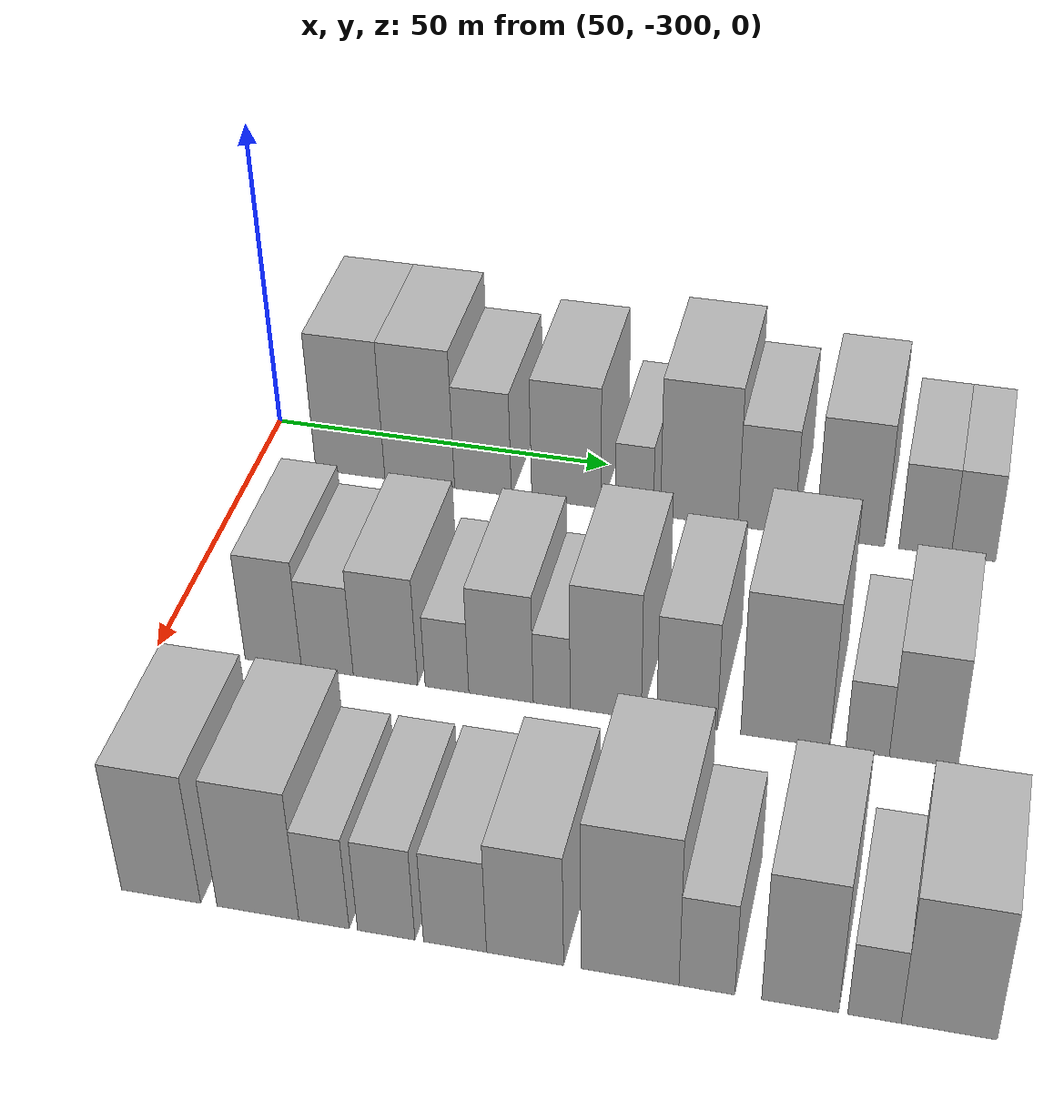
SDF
<sdf version="1.6">
 <world name="default">
  <model name="building_10">
   <static>1</static>
   <pose>50.0000 -286.0187 0 0.000000 0.000000 0.000000</pose>
   <link name="link">
    <pose>0 0 12.00 0 0 0</pose>
    <collision name="collision"><geometry><box><size>20.0000 10.4171 24.0000</size></box></geometry></collision>
    <visual name="visual">
     <cast_shadows>0</cast_shadows>
     <geometry><box><size>20.0000 10.4171 24.0000</size></box></geometry>
     <material>
      <script>
       <uri>model://HANNAS_wall/materials/scripts</uri>
       <uri>model://HANNAS_wall/materials/textures</uri>
       <name>vrc/HANNAS_wall</name>
      </script>
     </material>
    </visual>
   </link>
  </model>
  <model name="building_11">
   <static>1</static>
   <pose>50.0000 -275.6110 0 0.000000 0.000000 0.000000</pose>
   <link name="link">
    <pose>0 0 12.00 0 0 0</pose>
    <collision name="collision"><geometry><box><size>20.0000 10.3982 24.0000</size></box></geometry></collision>
    <visual name="visual">
     <cast_shadows>0</cast_shadows>
     <geometry><box><size>20.0000 10.3982 24.0000</size></box></geometry>
     <material>
      <script>
       <uri>model://HANNAS_wall/materials/scripts</uri>
       <uri>model://HANNAS_wall/materials/textures</uri>
       <name>vrc/HANNAS_wall</name>
      </script>
     </material>
    </visual>
   </link>
  </model>
  <model name="building_12">
   <static>1</static>
   <pose>50.0000 -266.2202 0 0.000000 0.000000 0.000000</pose>
   <link name="link">
    <pose>0 0 9.00 0 0 0</pose>
    <collision name="collision"><geometry><box><size>20.0000 8.3834 18.0000</size></box></geometry></collision>
    <visual name="visual">
     <cast_shadows>0</cast_shadows>
     <geometry><box><size>20.0000 8.3834 18.0000</size></box></geometry>
     <material>
      <script>
       <uri>model://HANNAS_wall/materials/scripts</uri>
       <uri>model://HANNAS_wall/materials/textures</uri>
       <name>vrc/HANNAS_wall</name>
      </script>
     </material>
    </visual>
   </link>
  </model>
  <model name="building_13">
   <static>1</static>
   <pose>50.0000 -253.9671 0 0.000000 0.000000 0.000000</pose>
   <link name="link">
    <pose>0 0 10.50 0 0 0</pose>
    <collision name="collision"><geometry><box><size>20.0000 10.1227 21.0000</size></box></geometry></collision>
    <visual name="visual">
     <cast_shadows>0</cast_shadows>
     <geometry><box><size>20.0000 10.1227 21.0000</size></box></geometry>
     <material>
      <script>
       <uri>model://HANNAS_wall/materials/scripts</uri>
       <uri>model://HANNAS_wall/materials/textures</uri>
       <name>vrc/HANNAS_wall</name>
      </script>
     </material>
    </visual>
   </link>
  </model>
  <model name="building_14">
   <static>1</static>
   <pose>50.0000 -244.1444 0 0.000000 0.000000 0.000000</pose>
   <link name="link">
    <pose>0 0 6.00 0 0 0</pose>
    <collision name="collision"><geometry><box><size>20.0000 5.5228 12.0000</size></box></geometry></collision>
    <visual name="visual">
     <cast_shadows>0</cast_shadows>
     <geometry><box><size>20.0000 5.5228 12.0000</size></box></geometry>
     <material>
      <script>
       <uri>model://HANNAS_wall/materials/scripts</uri>
       <uri>model://HANNAS_wall/materials/textures</uri>
       <name>vrc/HANNAS_wall</name>
      </script>
     </material>
    </visual>
   </link>
  </model>
  <model name="building_15">
   <static>1</static>
   <pose>50.0000 -234.8598 0 0.000000 0.000000 0.000000</pose>
   <link name="link">
    <pose>0 0 12.00 0 0 0</pose>
    <collision name="collision"><geometry><box><size>20.0000 11.0464 24.0000</size></box></geometry></collision>
    <visual name="visual">
     <cast_shadows>0</cast_shadows>
     <geometry><box><size>20.0000 11.0464 24.0000</size></box></geometry>
     <material>
      <script>
       <uri>model://HANNAS_wall/materials/scripts</uri>
       <uri>model://HANNAS_wall/materials/textures</uri>
       <name>vrc/HANNAS_wall</name>
      </script>
     </material>
    </visual>
   </link>
  </model>
  <model name="building_16">
   <static>1</static>
   <pose>50.0000 -225.3460 0 0.000000 0.000000 0.000000</pose>
   <link name="link">
    <pose>0 0 9.00 0 0 0</pose>
    <collision name="collision"><geometry><box><size>20.0000 7.9812 18.0000</size></box></geometry></collision>
    <visual name="visual">
     <cast_shadows>0</cast_shadows>
     <geometry><box><size>20.0000 7.9812 18.0000</size></box></geometry>
     <material>
      <script>
       <uri>model://HANNAS_wall/materials/scripts</uri>
       <uri>model://HANNAS_wall/materials/textures</uri>
       <name>vrc/HANNAS_wall</name>
      </script>
     </material>
    </visual>
   </link>
  </model>
  <model name="building_17">
   <static>1</static>
   <pose>50.0000 -213.5502 0 0.000000 0.000000 0.000000</pose>
   <link name="link">
    <pose>0 0 10.50 0 0 0</pose>
    <collision name="collision"><geometry><box><size>20.0000 9.6105 21.0000</size></box></geometry></collision>
    <visual name="visual">
     <cast_shadows>0</cast_shadows>
     <geometry><box><size>20.0000 9.6105 21.0000</size></box></geometry>
     <material>
      <script>
       <uri>model://HANNAS_wall/materials/scripts</uri>
       <uri>model://HANNAS_wall/materials/textures</uri>
       <name>vrc/HANNAS_wall</name>
      </script>
     </material>
    </visual>
   </link>
  </model>
  <model name="building_18">
   <static>1</static>
   <pose>50.0000 -203.1293 0 0.000000 0.000000 0.000000</pose>
   <link name="link">
    <pose>0 0 7.50 0 0 0</pose>
    <collision name="collision"><geometry><box><size>20.0000 7.2313 15.0000</size></box></geometry></collision>
    <visual name="visual">
     <cast_shadows>0</cast_shadows>
     <geometry><box><size>20.0000 7.2313 15.0000</size></box></geometry>
     <material>
      <script>
       <uri>model://HANNAS_wall/materials/scripts</uri>
       <uri>model://HANNAS_wall/materials/textures</uri>
       <name>vrc/HANNAS_wall</name>
      </script>
     </material>
    </visual>
   </link>
  </model>
  <model name="building_19">
   <static>1</static>
   <pose>50.0000 -196.4776 0 0.000000 0.000000 0.000000</pose>
   <link name="link">
    <pose>0 0 7.50 0 0 0</pose>
    <collision name="collision"><geometry><box><size>20.0000 6.0720 15.0000</size></box></geometry></collision>
    <visual name="visual">
     <cast_shadows>0</cast_shadows>
     <geometry><box><size>20.0000 6.0720 15.0000</size></box></geometry>
     <material>
      <script>
       <uri>model://HANNAS_wall/materials/scripts</uri>
       <uri>model://HANNAS_wall/materials/textures</uri>
       <name>vrc/HANNAS_wall</name>
      </script>
     </material>
    </visual>
   </link>
  </model>
  <model name="building_96">
   <static>1</static>
   <pose>90.0000 -284.1683 0 0.000000 0.000000 0.000000</pose>
   <link name="link">
    <pose>0 0 9.00 0 0 0</pose>
    <collision name="collision"><geometry><box><size>20.0000 7.7015 18.0000</size></box></geometry></collision>
    <visual name="visual">
     <cast_shadows>0</cast_shadows>
     <geometry><box><size>20.0000 7.7015 18.0000</size></box></geometry>
     <material>
      <script>
       <uri>model://HANNAS_wall/materials/scripts</uri>
       <uri>model://HANNAS_wall/materials/textures</uri>
       <name>vrc/HANNAS_wall</name>
      </script>
     </material>
    </visual>
   </link>
  </model>
  <model name="building_97">
   <static>1</static>
   <pose>90.0000 -276.8139 0 0.000000 0.000000 0.000000</pose>
   <link name="link">
    <pose>0 0 7.50 0 0 0</pose>
    <collision name="collision"><geometry><box><size>20.0000 7.0073 15.0000</size></box></geometry></collision>
    <visual name="visual">
     <cast_shadows>0</cast_shadows>
     <geometry><box><size>20.0000 7.0073 15.0000</size></box></geometry>
     <material>
      <script>
       <uri>model://HANNAS_wall/materials/scripts</uri>
       <uri>model://HANNAS_wall/materials/textures</uri>
       <name>vrc/HANNAS_wall</name>
      </script>
     </material>
    </visual>
   </link>
  </model>
  <model name="building_98">
   <static>1</static>
   <pose>90.0000 -268.9836 0 0.000000 0.000000 0.000000</pose>
   <link name="link">
    <pose>0 0 9.00 0 0 0</pose>
    <collision name="collision"><geometry><box><size>20.0000 8.6532 18.0000</size></box></geometry></collision>
    <visual name="visual">
     <cast_shadows>0</cast_shadows>
     <geometry><box><size>20.0000 8.6532 18.0000</size></box></geometry>
     <material>
      <script>
       <uri>model://HANNAS_wall/materials/scripts</uri>
       <uri>model://HANNAS_wall/materials/textures</uri>
       <name>vrc/HANNAS_wall</name>
      </script>
     </material>
    </visual>
   </link>
  </model>
  <model name="building_99">
   <static>1</static>
   <pose>90.0000 -260.7581 0 0.000000 0.000000 0.000000</pose>
   <link name="link">
    <pose>0 0 6.00 0 0 0</pose>
    <collision name="collision"><geometry><box><size>20.0000 5.7977 12.0000</size></box></geometry></collision>
    <visual name="visual">
     <cast_shadows>0</cast_shadows>
     <geometry><box><size>20.0000 5.7977 12.0000</size></box></geometry>
     <material>
      <script>
       <uri>model://HANNAS_wall/materials/scripts</uri>
       <uri>model://HANNAS_wall/materials/textures</uri>
       <name>vrc/HANNAS_wall</name>
      </script>
     </material>
    </visual>
   </link>
  </model>
  <model name="building_100">
   <static>1</static>
   <pose>90.0000 -253.6061 0 0.000000 0.000000 0.000000</pose>
   <link name="link">
    <pose>0 0 9.00 0 0 0</pose>
    <collision name="collision"><geometry><box><size>20.0000 8.5063 18.0000</size></box></geometry></collision>
    <visual name="visual">
     <cast_shadows>0</cast_shadows>
     <geometry><box><size>20.0000 8.5063 18.0000</size></box></geometry>
     <material>
      <script>
       <uri>model://HANNAS_wall/materials/scripts</uri>
       <uri>model://HANNAS_wall/materials/textures</uri>
       <name>vrc/HANNAS_wall</name>
      </script>
     </material>
    </visual>
   </link>
  </model>
  <model name="building_101">
   <static>1</static>
   <pose>90.0000 -246.9345 0 0.000000 0.000000 0.000000</pose>
   <link name="link">
    <pose>0 0 6.00 0 0 0</pose>
    <collision name="collision"><geometry><box><size>20.0000 4.8370 12.0000</size></box></geometry></collision>
    <visual name="visual">
     <cast_shadows>0</cast_shadows>
     <geometry><box><size>20.0000 4.8370 12.0000</size></box></geometry>
     <material>
      <script>
       <uri>model://HANNAS_wall/materials/scripts</uri>
       <uri>model://HANNAS_wall/materials/textures</uri>
       <name>vrc/HANNAS_wall</name>
      </script>
     </material>
    </visual>
   </link>
  </model>
  <model name="building_102">
   <static>1</static>
   <pose>90.0000 -239.9209 0 0.000000 0.000000 0.000000</pose>
   <link name="link">
    <pose>0 0 10.50 0 0 0</pose>
    <collision name="collision"><geometry><box><size>20.0000 9.1901 21.0000</size></box></geometry></collision>
    <visual name="visual">
     <cast_shadows>0</cast_shadows>
     <geometry><box><size>20.0000 9.1901 21.0000</size></box></geometry>
     <material>
      <script>
       <uri>model://HANNAS_wall/materials/scripts</uri>
       <uri>model://HANNAS_wall/materials/textures</uri>
       <name>vrc/HANNAS_wall</name>
      </script>
     </material>
    </visual>
   </link>
  </model>
  <model name="building_103">
   <static>1</static>
   <pose>90.0000 -229.4574 0 0.000000 0.000000 0.000000</pose>
   <link name="link">
    <pose>0 0 9.00 0 0 0</pose>
    <collision name="collision"><geometry><box><size>20.0000 7.7369 18.0000</size></box></geometry></collision>
    <visual name="visual">
     <cast_shadows>0</cast_shadows>
     <geometry><box><size>20.0000 7.7369 18.0000</size></box></geometry>
     <material>
      <script>
       <uri>model://HANNAS_wall/materials/scripts</uri>
       <uri>model://HANNAS_wall/materials/textures</uri>
       <name>vrc/HANNAS_wall</name>
      </script>
     </material>
    </visual>
   </link>
  </model>
  <model name="building_104">
   <static>1</static>
   <pose>90.0000 -216.9797 0 0.000000 0.000000 0.000000</pose>
   <link name="link">
    <pose>0 0 12.00 0 0 0</pose>
    <collision name="collision"><geometry><box><size>20.0000 11.2185 24.0000</size></box></geometry></collision>
    <visual name="visual">
     <cast_shadows>0</cast_shadows>
     <geometry><box><size>20.0000 11.2185 24.0000</size></box></geometry>
     <material>
      <script>
       <uri>model://HANNAS_wall/materials/scripts</uri>
       <uri>model://HANNAS_wall/materials/textures</uri>
       <name>vrc/HANNAS_wall</name>
      </script>
     </material>
    </visual>
   </link>
  </model>
  <model name="building_105">
   <static>1</static>
   <pose>90.0000 -206.6452 0 0.000000 0.000000 0.000000</pose>
   <link name="link">
    <pose>0 0 6.00 0 0 0</pose>
    <collision name="collision"><geometry><box><size>20.0000 5.4505 12.0000</size></box></geometry></collision>
    <visual name="visual">
     <cast_shadows>0</cast_shadows>
     <geometry><box><size>20.0000 5.4505 12.0000</size></box></geometry>
     <material>
      <script>
       <uri>model://HANNAS_wall/materials/scripts</uri>
       <uri>model://HANNAS_wall/materials/textures</uri>
       <name>vrc/HANNAS_wall</name>
      </script>
     </material>
    </visual>
   </link>
  </model>
  <model name="building_106">
   <static>1</static>
   <pose>90.0000 -199.6742 0 0.000000 0.000000 0.000000</pose>
   <link name="link">
    <pose>0 0 9.00 0 0 0</pose>
    <collision name="collision"><geometry><box><size>20.0000 8.4915 18.0000</size></box></geometry></collision>
    <visual name="visual">
     <cast_shadows>0</cast_shadows>
     <geometry><box><size>20.0000 8.4915 18.0000</size></box></geometry>
     <material>
      <script>
       <uri>model://HANNAS_wall/materials/scripts</uri>
       <uri>model://HANNAS_wall/materials/textures</uri>
       <name>vrc/HANNAS_wall</name>
      </script>
     </material>
    </visual>
   </link>
  </model>
  <model name="building_180">
   <static>1</static>
   <pose>130.0000 -284.3282 0 0.000000 0.000000 0.000000</pose>
   <link name="link">
    <pose>0 0 10.50 0 0 0</pose>
    <collision name="collision"><geometry><box><size>20.0000 9.7080 21.0000</size></box></geometry></collision>
    <visual name="visual">
     <cast_shadows>0</cast_shadows>
     <geometry><box><size>20.0000 9.7080 21.0000</size></box></geometry>
     <material>
      <script>
       <uri>model://HANNAS_wall/materials/scripts</uri>
       <uri>model://HANNAS_wall/materials/textures</uri>
       <name>vrc/HANNAS_wall</name>
      </script>
     </material>
    </visual>
   </link>
  </model>
  <model name="building_181">
   <static>1</static>
   <pose>130.0000 -272.5178 0 0.000000 0.000000 0.000000</pose>
   <link name="link">
    <pose>0 0 10.50 0 0 0</pose>
    <collision name="collision"><geometry><box><size>20.0000 9.9128 21.0000</size></box></geometry></collision>
    <visual name="visual">
     <cast_shadows>0</cast_shadows>
     <geometry><box><size>20.0000 9.9128 21.0000</size></box></geometry>
     <material>
      <script>
       <uri>model://HANNAS_wall/materials/scripts</uri>
       <uri>model://HANNAS_wall/materials/textures</uri>
       <name>vrc/HANNAS_wall</name>
      </script>
     </material>
    </visual>
   </link>
  </model>
  <model name="building_182">
   <static>1</static>
   <pose>130.0000 -264.5522 0 0.000000 0.000000 0.000000</pose>
   <link name="link">
    <pose>0 0 7.50 0 0 0</pose>
    <collision name="collision"><geometry><box><size>20.0000 6.0185 15.0000</size></box></geometry></collision>
    <visual name="visual">
     <cast_shadows>0</cast_shadows>
     <geometry><box><size>20.0000 6.0185 15.0000</size></box></geometry>
     <material>
      <script>
       <uri>model://HANNAS_wall/materials/scripts</uri>
       <uri>model://HANNAS_wall/materials/textures</uri>
       <name>vrc/HANNAS_wall</name>
      </script>
     </material>
    </visual>
   </link>
  </model>
  <model name="building_183">
   <static>1</static>
   <pose>130.0000 -257.1374 0 0.000000 0.000000 0.000000</pose>
   <link name="link">
    <pose>0 0 7.50 0 0 0</pose>
    <collision name="collision"><geometry><box><size>20.0000 6.8112 15.0000</size></box></geometry></collision>
    <visual name="visual">
     <cast_shadows>0</cast_shadows>
     <geometry><box><size>20.0000 6.8112 15.0000</size></box></geometry>
     <material>
      <script>
       <uri>model://HANNAS_wall/materials/scripts</uri>
       <uri>model://HANNAS_wall/materials/textures</uri>
       <name>vrc/HANNAS_wall</name>
      </script>
     </material>
    </visual>
   </link>
  </model>
  <model name="building_184">
   <static>1</static>
   <pose>130.0000 -249.0350 0 0.000000 0.000000 0.000000</pose>
   <link name="link">
    <pose>0 0 7.50 0 0 0</pose>
    <collision name="collision"><geometry><box><size>20.0000 7.3935 15.0000</size></box></geometry></collision>
    <visual name="visual">
     <cast_shadows>0</cast_shadows>
     <geometry><box><size>20.0000 7.3935 15.0000</size></box></geometry>
     <material>
      <script>
       <uri>model://HANNAS_wall/materials/scripts</uri>
       <uri>model://HANNAS_wall/materials/textures</uri>
       <name>vrc/HANNAS_wall</name>
      </script>
     </material>
    </visual>
   </link>
  </model>
  <model name="building_185">
   <static>1</static>
   <pose>130.0000 -240.8642 0 0.000000 0.000000 0.000000</pose>
   <link name="link">
    <pose>0 0 9.00 0 0 0</pose>
    <collision name="collision"><geometry><box><size>20.0000 8.9480 18.0000</size></box></geometry></collision>
    <visual name="visual">
     <cast_shadows>0</cast_shadows>
     <geometry><box><size>20.0000 8.9480 18.0000</size></box></geometry>
     <material>
      <script>
       <uri>model://HANNAS_wall/materials/scripts</uri>
       <uri>model://HANNAS_wall/materials/textures</uri>
       <name>vrc/HANNAS_wall</name>
      </script>
     </material>
    </visual>
   </link>
  </model>
  <model name="building_186">
   <static>1</static>
   <pose>130.0000 -228.8006 0 0.000000 0.000000 0.000000</pose>
   <link name="link">
    <pose>0 0 12.00 0 0 0</pose>
    <collision name="collision"><geometry><box><size>20.0000 11.1793 24.0000</size></box></geometry></collision>
    <visual name="visual">
     <cast_shadows>0</cast_shadows>
     <geometry><box><size>20.0000 11.1793 24.0000</size></box></geometry>
     <material>
      <script>
       <uri>model://HANNAS_wall/materials/scripts</uri>
       <uri>model://HANNAS_wall/materials/textures</uri>
       <name>vrc/HANNAS_wall</name>
      </script>
     </material>
    </visual>
   </link>
  </model>
  <model name="building_187">
   <static>1</static>
   <pose>130.0000 -220.0590 0 0.000000 0.000000 0.000000</pose>
   <link name="link">
    <pose>0 0 7.50 0 0 0</pose>
    <collision name="collision"><geometry><box><size>20.0000 6.3041 15.0000</size></box></geometry></collision>
    <visual name="visual">
     <cast_shadows>0</cast_shadows>
     <geometry><box><size>20.0000 6.3041 15.0000</size></box></geometry>
     <material>
      <script>
       <uri>model://HANNAS_wall/materials/scripts</uri>
       <uri>model://HANNAS_wall/materials/textures</uri>
       <name>vrc/HANNAS_wall</name>
      </script>
     </material>
    </visual>
   </link>
  </model>
  <model name="building_188">
   <static>1</static>
   <pose>130.0000 -209.6173 0 0.000000 0.000000 0.000000</pose>
   <link name="link">
    <pose>0 0 10.50 0 0 0</pose>
    <collision name="collision"><geometry><box><size>20.0000 8.5793 21.0000</size></box></geometry></collision>
    <visual name="visual">
     <cast_shadows>0</cast_shadows>
     <geometry><box><size>20.0000 8.5793 21.0000</size></box></geometry>
     <material>
      <script>
       <uri>model://HANNAS_wall/materials/scripts</uri>
       <uri>model://HANNAS_wall/materials/textures</uri>
       <name>vrc/HANNAS_wall</name>
      </script>
     </material>
    </visual>
   </link>
  </model>
  <model name="building_189">
   <static>1</static>
   <pose>130.0000 -201.3903 0 0.000000 0.000000 0.000000</pose>
   <link name="link">
    <pose>0 0 6.00 0 0 0</pose>
    <collision name="collision"><geometry><box><size>20.0000 5.8745 12.0000</size></box></geometry></collision>
    <visual name="visual">
     <cast_shadows>0</cast_shadows>
     <geometry><box><size>20.0000 5.8745 12.0000</size></box></geometry>
     <material>
      <script>
       <uri>model://HANNAS_wall/materials/scripts</uri>
       <uri>model://HANNAS_wall/materials/textures</uri>
       <name>vrc/HANNAS_wall</name>
      </script>
     </material>
    </visual>
   </link>
  </model>
  <model name="building_190">
   <static>1</static>
   <pose>130.0000 -193.2221 0 0.000000 0.000000 0.000000</pose>
   <link name="link">
    <pose>0 0 10.50 0 0 0</pose>
    <collision name="collision"><geometry><box><size>20.0000 10.4620 21.0000</size></box></geometry></collision>
    <visual name="visual">
     <cast_shadows>0</cast_shadows>
     <geometry><box><size>20.0000 10.4620 21.0000</size></box></geometry>
     <material>
      <script>
       <uri>model://HANNAS_wall/materials/scripts</uri>
       <uri>model://HANNAS_wall/materials/textures</uri>
       <name>vrc/HANNAS_wall</name>
      </script>
     </material>
    </visual>
   </link>
  </model>
 </world>
</sdf>
